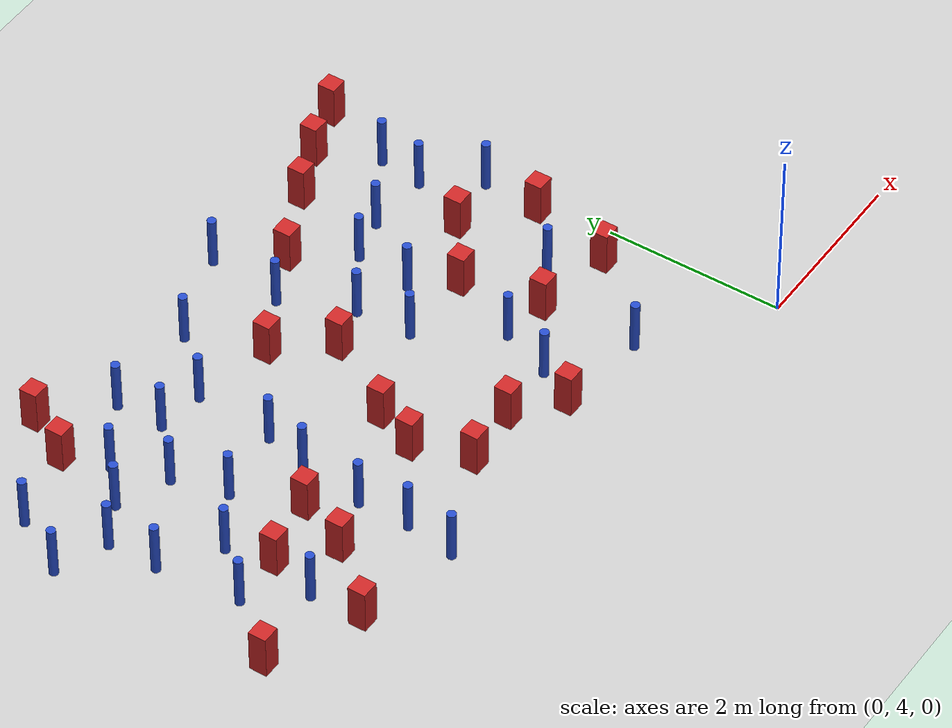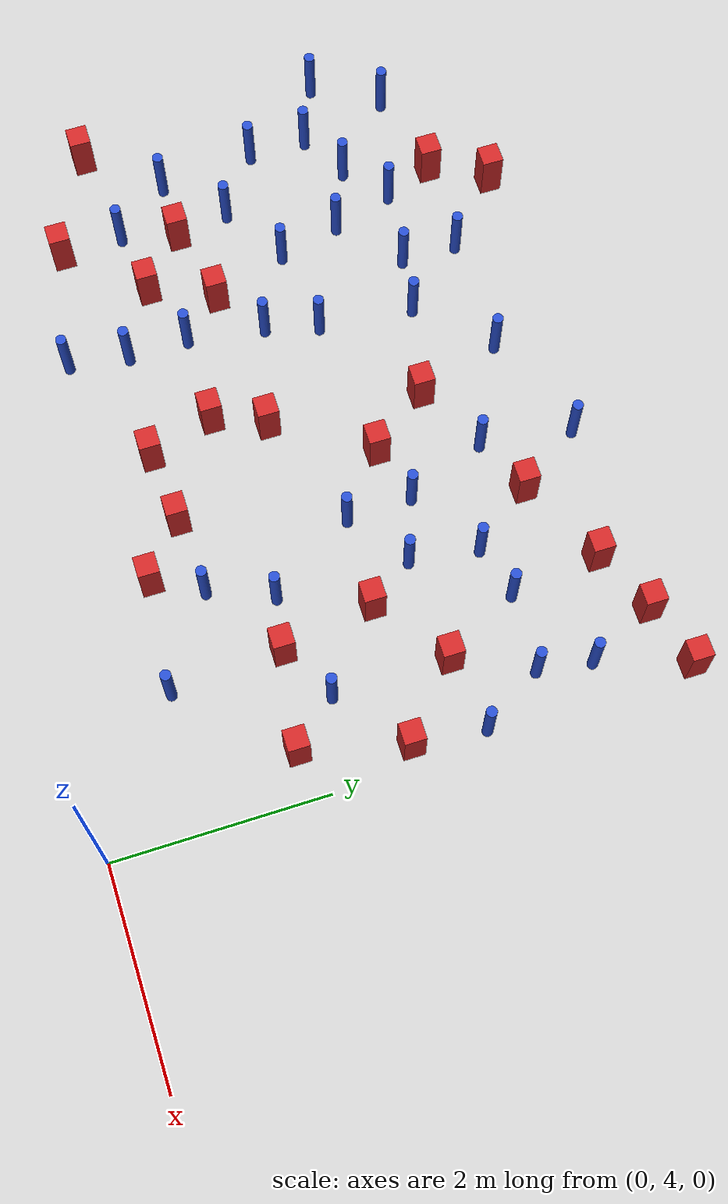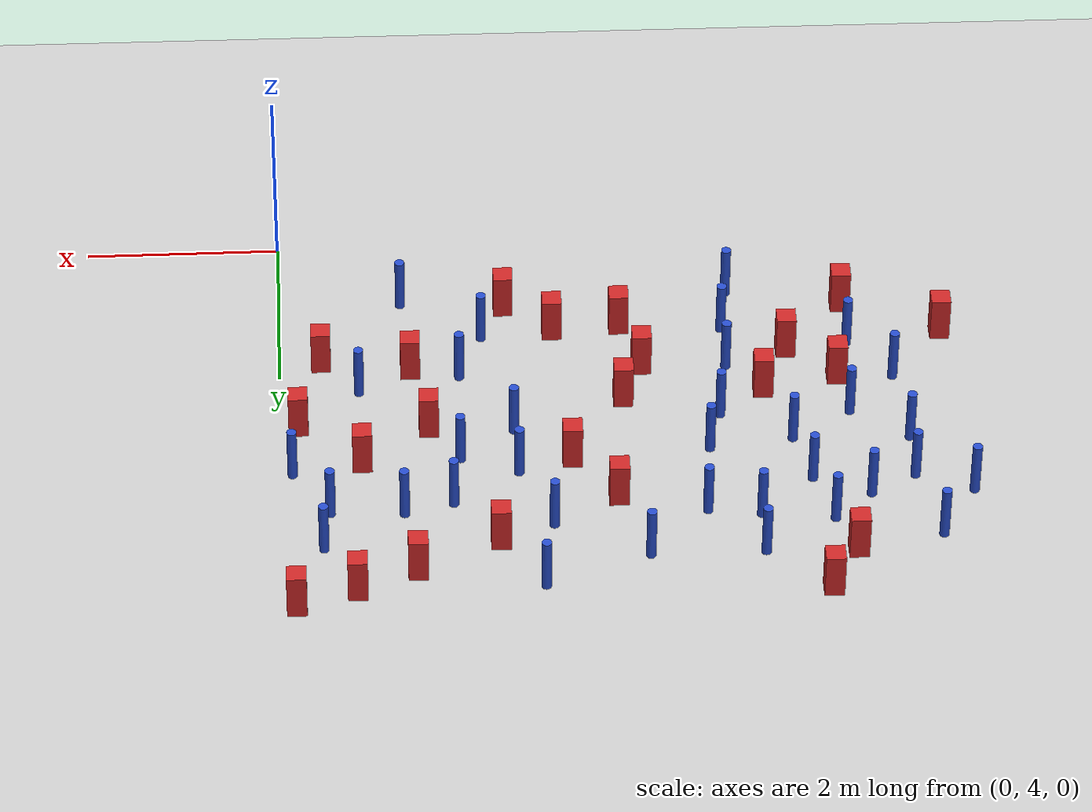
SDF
<sdf version="1.6">
 <world name="default">
  <model name="ground_plane">
   <static>1</static>
   <link name="link">
    <collision name="collision">
     <geometry><plane><normal>0 0 1</normal><size>100 100</size></plane></geometry>
     <surface><friction><ode><mu>100</mu><mu2>50</mu2></ode></friction></surface>
    </collision>
    <visual name="visual">
     <cast_shadows>0</cast_shadows>
     <geometry><plane><normal>0 0 1</normal><size>100 100</size></plane></geometry>
     <material>
      <ambient>1.0 1.0 1.0 1.0</ambient>
      <diffuse>0.8 0.8 0.8 1.0</diffuse>
      <specular>0.01 0.01 0.01 1.000000</specular>
     </material>
    </visual>
   </link>
  </model>
  <model name="square_post_obstacle0">
   <static>true</static>
   <pose>-0.75469007725 9.18106437961 8.22691968438e-08 7.22125133819e-06 -7.54495500217e-07 2.29674213826e-05</pose>
   <link name="link">
    <pose>0 0 0.25 0 -0 0</pose>
    <inertial>
     <mass>100</mass>
     <inertia>
      <ixx>0.166667</ixx>
      <ixy>0</ixy>
      <ixz>0</ixz>
      <iyy>0.166667</iyy>
      <iyz>0</iyz>
      <izz>0.166667</izz>
     </inertia>
    </inertial>
    <collision name="collision"><geometry><box><size>.2 .2 .5</size></box></geometry></collision>
    <visual name="visual">
     <geometry><box><size>.2 .2 .5</size></box></geometry>
     <material>
      <script><name>Gazebo/Red</name><uri>file://media/materials/scripts/gazebo.material</uri></script>
     </material>
    </visual>
   </link>
  </model>
  <model name="square_post_obstacle2">
   <static>true</static>
   <pose>-0.434591749695 5.815922877 8.22691968438e-08 7.22125133819e-06 -7.54495500217e-07 2.29674213826e-05</pose>
   <link name="link">
    <pose>0 0 0.25 0 -0 0</pose>
    <inertial>
     <mass>100</mass>
     <inertia>
      <ixx>0.166667</ixx>
      <ixy>0</ixy>
      <ixz>0</ixz>
      <iyy>0.166667</iyy>
      <iyz>0</iyz>
      <izz>0.166667</izz>
     </inertia>
    </inertial>
    <collision name="collision"><geometry><box><size>.2 .2 .5</size></box></geometry></collision>
    <visual name="visual">
     <geometry><box><size>.2 .2 .5</size></box></geometry>
     <material>
      <script><name>Gazebo/Red</name><uri>file://media/materials/scripts/gazebo.material</uri></script>
     </material>
    </visual>
   </link>
  </model>
  <model name="square_post_obstacle4">
   <static>true</static>
   <pose>-0.833897345285 7.33856920669 8.22691968438e-08 7.2212513382e-06 -7.54495500217e-07 2.29674213826e-05</pose>
   <link name="link">
    <pose>0 0 0.25 0 -0 0</pose>
    <inertial>
     <mass>100</mass>
     <inertia>
      <ixx>0.166667</ixx>
      <ixy>0</ixy>
      <ixz>0</ixz>
      <iyy>0.166667</iyy>
      <iyz>0</iyz>
      <izz>0.166667</izz>
     </inertia>
    </inertial>
    <collision name="collision"><geometry><box><size>.2 .2 .5</size></box></geometry></collision>
    <visual name="visual">
     <geometry><box><size>.2 .2 .5</size></box></geometry>
     <material>
      <script><name>Gazebo/Red</name><uri>file://media/materials/scripts/gazebo.material</uri></script>
     </material>
    </visual>
   </link>
  </model>
  <model name="pole_obstacle5">
   <static>true</static>
   <pose>-4.36620819852 7.22213696595 2.88873142074e-08 -9.90536690842e-09 4.60219948965e-07 -1.20965994976e-07</pose>
   <link name="link">
    <pose>0 0 0.3 0 -0 0</pose>
    <inertial>
     <mass>1</mass>
     <inertia><ixx>0.145833</ixx><ixy>0</ixy><ixz>0</ixz><iyy>0.145833</iyy><iyz>0</iyz><izz>0.125</izz></inertia>
    </inertial>
    <collision name="collision">
     <geometry><cylinder><radius>0.05</radius><length>.6</length></cylinder></geometry>
    </collision>
    <visual name="visual">
     <geometry><cylinder><radius>0.05</radius><length>.6</length></cylinder></geometry>
     <material>
      <script><name>Gazebo/Blue</name><uri>file://media/materials/scripts/gazebo.material</uri></script>
     </material>
    </visual>
   </link>
  </model>
  <model name="pole_obstacle11">
   <static>true</static>
   <pose>-5.37472583183 7.70263411717 2.88873142074e-08 -9.90536690842e-09 4.60219948965e-07 -1.20965994976e-07</pose>
   <link name="link">
    <pose>0 0 0.3 0 -0 0</pose>
    <inertial>
     <mass>1</mass>
     <inertia><ixx>0.145833</ixx><ixy>0</ixy><ixz>0</ixz><iyy>0.145833</iyy><iyz>0</iyz><izz>0.125</izz></inertia>
    </inertial>
    <collision name="collision">
     <geometry><cylinder><radius>0.05</radius><length>.6</length></cylinder></geometry>
    </collision>
    <visual name="visual">
     <geometry><cylinder><radius>0.05</radius><length>.6</length></cylinder></geometry>
     <material>
      <script><name>Gazebo/Blue</name><uri>file://media/materials/scripts/gazebo.material</uri></script>
     </material>
    </visual>
   </link>
  </model>
  <model name="pole_obstacle15">
   <static>true</static>
   <pose>-1.85488201403 6.04811225388 2.88873142074e-08 -9.90536689852e-09 4.60219948989e-07 -1.2096599496e-07</pose>
   <link name="link">
    <pose>0 0 0.3 0 -0 0</pose>
    <inertial>
     <mass>1</mass>
     <inertia><ixx>0.145833</ixx><ixy>0</ixy><ixz>0</ixz><iyy>0.145833</iyy><iyz>0</iyz><izz>0.125</izz></inertia>
    </inertial>
    <collision name="collision">
     <geometry><cylinder><radius>0.05</radius><length>.6</length></cylinder></geometry>
    </collision>
    <visual name="visual">
     <geometry><cylinder><radius>0.05</radius><length>.6</length></cylinder></geometry>
     <material>
      <script><name>Gazebo/Blue</name><uri>file://media/materials/scripts/gazebo.material</uri></script>
     </material>
    </visual>
   </link>
  </model>
  <model name="square_post_obstacle27">
   <static>true</static>
   <pose>-4.9641482404 6.37326070435 8.22691968438e-08 7.2212513382e-06 -7.54495500217e-07 2.29674213826e-05</pose>
   <link name="link">
    <pose>0 0 0.25 0 -0 0</pose>
    <inertial>
     <mass>100</mass>
     <inertia>
      <ixx>0.166667</ixx>
      <ixy>0</ixy>
      <ixz>0</ixz>
      <iyy>0.166667</iyy>
      <iyz>0</iyz>
      <izz>0.166667</izz>
     </inertia>
    </inertial>
    <collision name="collision"><geometry><box><size>.2 .2 .5</size></box></geometry></collision>
    <visual name="visual">
     <geometry><box><size>.2 .2 .5</size></box></geometry>
     <material>
      <script><name>Gazebo/Red</name><uri>file://media/materials/scripts/gazebo.material</uri></script>
     </material>
    </visual>
   </link>
  </model>
  <model name="square_post_obstacle32">
   <static>true</static>
   <pose>-2.9597742817 7.34418340851 8.22691968438e-08 7.2212513382e-06 -7.54495500217e-07 2.29674213826e-05</pose>
   <link name="link">
    <pose>0 0 0.25 0 -0 0</pose>
    <inertial>
     <mass>100</mass>
     <inertia>
      <ixx>0.166667</ixx>
      <ixy>0</ixy>
      <ixz>0</ixz>
      <iyy>0.166667</iyy>
      <iyz>0</iyz>
      <izz>0.166667</izz>
     </inertia>
    </inertial>
    <collision name="collision"><geometry><box><size>.2 .2 .5</size></box></geometry></collision>
    <visual name="visual">
     <geometry><box><size>.2 .2 .5</size></box></geometry>
     <material>
      <script><name>Gazebo/Red</name><uri>file://media/materials/scripts/gazebo.material</uri></script>
     </material>
    </visual>
   </link>
  </model>
  <model name="square_post_obstacle43">
   <static>true</static>
   <pose>-1.35121013971 5.95840660229 8.22691968438e-08 7.2212513382e-06 -7.54495500217e-07 2.29674213826e-05</pose>
   <link name="link">
    <pose>0 0 0.25 0 -0 0</pose>
    <inertial>
     <mass>100</mass>
     <inertia>
      <ixx>0.166667</ixx>
      <ixy>0</ixy>
      <ixz>0</ixz>
      <iyy>0.166667</iyy>
      <iyz>0</iyz>
      <izz>0.166667</izz>
     </inertia>
    </inertial>
    <collision name="collision"><geometry><box><size>.2 .2 .5</size></box></geometry></collision>
    <visual name="visual">
     <geometry><box><size>.2 .2 .5</size></box></geometry>
     <material>
      <script><name>Gazebo/Red</name><uri>file://media/materials/scripts/gazebo.material</uri></script>
     </material>
    </visual>
   </link>
  </model>
  <model name="pole_obstacle46">
   <static>true</static>
   <pose>-6.41535099207 7.69354765389 2.88873142074e-08 -9.90536690842e-09 4.60219948965e-07 -1.20965994976e-07</pose>
   <link name="link">
    <pose>0 0 0.3 0 -0 0</pose>
    <inertial>
     <mass>1</mass>
     <inertia><ixx>0.145833</ixx><ixy>0</ixy><ixz>0</ixz><iyy>0.145833</iyy><iyz>0</iyz><izz>0.125</izz></inertia>
    </inertial>
    <collision name="collision">
     <geometry><cylinder><radius>0.05</radius><length>.6</length></cylinder></geometry>
    </collision>
    <visual name="visual">
     <geometry><cylinder><radius>0.05</radius><length>.6</length></cylinder></geometry>
     <material>
      <script><name>Gazebo/Blue</name><uri>file://media/materials/scripts/gazebo.material</uri></script>
     </material>
    </visual>
   </link>
  </model>
  <model name="pole_obstacle47">
   <static>true</static>
   <pose>-4.67995107639 4.84374280974 2.88873142074e-08 -9.90536690842e-09 4.60219948965e-07 -1.20965994976e-07</pose>
   <link name="link">
    <pose>0 0 0.3 0 -0 0</pose>
    <inertial>
     <mass>1</mass>
     <inertia><ixx>0.145833</ixx><ixy>0</ixy><ixz>0</ixz><iyy>0.145833</iyy><iyz>0</iyz><izz>0.125</izz></inertia>
    </inertial>
    <collision name="collision">
     <geometry><cylinder><radius>0.05</radius><length>.6</length></cylinder></geometry>
    </collision>
    <visual name="visual">
     <geometry><cylinder><radius>0.05</radius><length>.6</length></cylinder></geometry>
     <material>
      <script><name>Gazebo/Blue</name><uri>file://media/materials/scripts/gazebo.material</uri></script>
     </material>
    </visual>
   </link>
  </model>
  <model name="pole_obstacle50">
   <static>true</static>
   <pose>-4.59498439407 5.40994336621 2.88873142074e-08 -9.90536690842e-09 4.60219948965e-07 -1.20965994976e-07</pose>
   <link name="link">
    <pose>0 0 0.3 0 -0 0</pose>
    <inertial>
     <mass>1</mass>
     <inertia><ixx>0.145833</ixx><ixy>0</ixy><ixz>0</ixz><iyy>0.145833</iyy><iyz>0</iyz><izz>0.125</izz></inertia>
    </inertial>
    <collision name="collision">
     <geometry><cylinder><radius>0.05</radius><length>.6</length></cylinder></geometry>
    </collision>
    <visual name="visual">
     <geometry><cylinder><radius>0.05</radius><length>.6</length></cylinder></geometry>
     <material>
      <script><name>Gazebo/Blue</name><uri>file://media/materials/scripts/gazebo.material</uri></script>
     </material>
    </visual>
   </link>
  </model>
  <model name="pole_obstacle59">
   <static>true</static>
   <pose>-5.95150804561 7.949520988 2.88873142074e-08 -9.90536690842e-09 4.60219948965e-07 -1.20965994976e-07</pose>
   <link name="link">
    <pose>0 0 0.3 0 -0 0</pose>
    <inertial>
     <mass>1</mass>
     <inertia><ixx>0.145833</ixx><ixy>0</ixy><ixz>0</ixz><iyy>0.145833</iyy><iyz>0</iyz><izz>0.125</izz></inertia>
    </inertial>
    <collision name="collision">
     <geometry><cylinder><radius>0.05</radius><length>.6</length></cylinder></geometry>
    </collision>
    <visual name="visual">
     <geometry><cylinder><radius>0.05</radius><length>.6</length></cylinder></geometry>
     <material>
      <script><name>Gazebo/Blue</name><uri>file://media/materials/scripts/gazebo.material</uri></script>
     </material>
    </visual>
   </link>
  </model>
  <model name="square_post_obstacle63">
   <static>true</static>
   <pose>-3.73327817943 5.97383684884 8.22691968438e-08 7.2212513382e-06 -7.54495500217e-07 2.29674213826e-05</pose>
   <link name="link">
    <pose>0 0 0.25 0 -0 0</pose>
    <inertial>
     <mass>100</mass>
     <inertia>
      <ixx>0.166667</ixx>
      <ixy>0</ixy>
      <ixz>0</ixz>
      <iyy>0.166667</iyy>
      <iyz>0</iyz>
      <izz>0.166667</izz>
     </inertia>
    </inertial>
    <collision name="collision"><geometry><box><size>.2 .2 .5</size></box></geometry></collision>
    <visual name="visual">
     <geometry><box><size>.2 .2 .5</size></box></geometry>
     <material>
      <script><name>Gazebo/Red</name><uri>file://media/materials/scripts/gazebo.material</uri></script>
     </material>
    </visual>
   </link>
  </model>
  <model name="pole_obstacle65">
   <static>true</static>
   <pose>-2.61852434935 9.14432476609 2.88873142074e-08 -9.90536692318e-09 4.6021994893e-07 -1.20965994988e-07</pose>
   <link name="link">
    <pose>0 0 0.3 0 -0 0</pose>
    <inertial>
     <mass>1</mass>
     <inertia><ixx>0.145833</ixx><ixy>0</ixy><ixz>0</ixz><iyy>0.145833</iyy><iyz>0</iyz><izz>0.125</izz></inertia>
    </inertial>
    <collision name="collision">
     <geometry><cylinder><radius>0.05</radius><length>.6</length></cylinder></geometry>
    </collision>
    <visual name="visual">
     <geometry><cylinder><radius>0.05</radius><length>.6</length></cylinder></geometry>
     <material>
      <script><name>Gazebo/Blue</name><uri>file://media/materials/scripts/gazebo.material</uri></script>
     </material>
    </visual>
   </link>
  </model>
  <model name="pole_obstacle71">
   <static>true</static>
   <pose>-4.82885174587 8.74131016999 2.88873142074e-08 -9.9053668967e-09 4.60219948993e-07 -1.20965994957e-07</pose>
   <link name="link">
    <pose>0 0 0.3 0 -0 0</pose>
    <inertial>
     <mass>1</mass>
     <inertia><ixx>0.145833</ixx><ixy>0</ixy><ixz>0</ixz><iyy>0.145833</iyy><iyz>0</iyz><izz>0.125</izz></inertia>
    </inertial>
    <collision name="collision">
     <geometry><cylinder><radius>0.05</radius><length>.6</length></cylinder></geometry>
    </collision>
    <visual name="visual">
     <geometry><cylinder><radius>0.05</radius><length>.6</length></cylinder></geometry>
     <material>
      <script><name>Gazebo/Blue</name><uri>file://media/materials/scripts/gazebo.material</uri></script>
     </material>
    </visual>
   </link>
  </model>
  <model name="square_post_obstacle84">
   <static>true</static>
   <pose>-0.150910491051 9.37455441093 8.22691968438e-08 7.22125133819e-06 -7.54495500217e-07 2.29674213826e-05</pose>
   <link name="link">
    <pose>0 0 0.25 0 -0 0</pose>
    <inertial>
     <mass>100</mass>
     <inertia>
      <ixx>0.166667</ixx>
      <ixy>0</ixy>
      <ixz>0</ixz>
      <iyy>0.166667</iyy>
      <iyz>0</iyz>
      <izz>0.166667</izz>
     </inertia>
    </inertial>
    <collision name="collision"><geometry><box><size>.2 .2 .5</size></box></geometry></collision>
    <visual name="visual">
     <geometry><box><size>.2 .2 .5</size></box></geometry>
     <material>
      <script><name>Gazebo/Red</name><uri>file://media/materials/scripts/gazebo.material</uri></script>
     </material>
    </visual>
   </link>
  </model>
  <model name="square_post_obstacle86">
   <static>true</static>
   <pose>-5.45362824886 9.28962548809 8.22691968438e-08 7.22125133819e-06 -7.54495500217e-07 2.29674213826e-05</pose>
   <link name="link">
    <pose>0 0 0.25 0 -0 0</pose>
    <inertial>
     <mass>100</mass>
     <inertia>
      <ixx>0.166667</ixx>
      <ixy>0</ixy>
      <ixz>0</ixz>
      <iyy>0.166667</iyy>
      <iyz>0</iyz>
      <izz>0.166667</izz>
     </inertia>
    </inertial>
    <collision name="collision"><geometry><box><size>.2 .2 .5</size></box></geometry></collision>
    <visual name="visual">
     <geometry><box><size>.2 .2 .5</size></box></geometry>
     <material>
      <script><name>Gazebo/Red</name><uri>file://media/materials/scripts/gazebo.material</uri></script>
     </material>
    </visual>
   </link>
  </model>
  <model name="square_post_obstacle87">
   <static>true</static>
   <pose>-3.4032696324 7.918303642 8.22691968438e-08 7.22125133819e-06 -7.54495500217e-07 2.29674213826e-05</pose>
   <link name="link">
    <pose>0 0 0.25 0 -0 0</pose>
    <inertial>
     <mass>100</mass>
     <inertia>
      <ixx>0.166667</ixx>
      <ixy>0</ixy>
      <ixz>0</ixz>
      <iyy>0.166667</iyy>
      <iyz>0</iyz>
      <izz>0.166667</izz>
     </inertia>
    </inertial>
    <collision name="collision"><geometry><box><size>.2 .2 .5</size></box></geometry></collision>
    <visual name="visual">
     <geometry><box><size>.2 .2 .5</size></box></geometry>
     <material>
      <script><name>Gazebo/Red</name><uri>file://media/materials/scripts/gazebo.material</uri></script>
     </material>
    </visual>
   </link>
  </model>
  <model name="square_post_obstacle95">
   <static>true</static>
   <pose>-2.83246593654 5.40430172224 8.22691968438e-08 7.2212513382e-06 -7.54495500217e-07 2.29674213826e-05</pose>
   <link name="link">
    <pose>0 0 0.25 0 -0 0</pose>
    <inertial>
     <mass>100</mass>
     <inertia>
      <ixx>0.166667</ixx>
      <ixy>0</ixy>
      <ixz>0</ixz>
      <iyy>0.166667</iyy>
      <iyz>0</iyz>
      <izz>0.166667</izz>
     </inertia>
    </inertial>
    <collision name="collision"><geometry><box><size>.2 .2 .5</size></box></geometry></collision>
    <visual name="visual">
     <geometry><box><size>.2 .2 .5</size></box></geometry>
     <material>
      <script><name>Gazebo/Red</name><uri>file://media/materials/scripts/gazebo.material</uri></script>
     </material>
    </visual>
   </link>
  </model>
  <model name="pole_obstacle109">
   <static>true</static>
   <pose>-1.24381678062 8.06851914153 2.88873142074e-08 -9.90536690474e-09 4.60219948974e-07 -1.2096599497e-07</pose>
   <link name="link">
    <pose>0 0 0.3 0 -0 0</pose>
    <inertial>
     <mass>1</mass>
     <inertia><ixx>0.145833</ixx><ixy>0</ixy><ixz>0</ixz><iyy>0.145833</iyy><iyz>0</iyz><izz>0.125</izz></inertia>
    </inertial>
    <collision name="collision">
     <geometry><cylinder><radius>0.05</radius><length>.6</length></cylinder></geometry>
    </collision>
    <visual name="visual">
     <geometry><cylinder><radius>0.05</radius><length>.6</length></cylinder></geometry>
     <material>
      <script><name>Gazebo/Blue</name><uri>file://media/materials/scripts/gazebo.material</uri></script>
     </material>
    </visual>
   </link>
  </model>
  <model name="square_post_obstacle101">
   <static>true</static>
   <pose>-6.85830994746 5.54194706226 8.22691968438e-08 7.2212513382e-06 -7.54495500217e-07 2.29674213826e-05</pose>
   <link name="link">
    <pose>0 0 0.25 0 -0 0</pose>
    <inertial>
     <mass>100</mass>
     <inertia>
      <ixx>0.166667</ixx>
      <ixy>0</ixy>
      <ixz>0</ixz>
      <iyy>0.166667</iyy>
      <iyz>0</iyz>
      <izz>0.166667</izz>
     </inertia>
    </inertial>
    <collision name="collision"><geometry><box><size>.2 .2 .5</size></box></geometry></collision>
    <visual name="visual">
     <geometry><box><size>.2 .2 .5</size></box></geometry>
     <material>
      <script><name>Gazebo/Red</name><uri>file://media/materials/scripts/gazebo.material</uri></script>
     </material>
    </visual>
   </link>
  </model>
  <model name="pole_obstacle114">
   <static>true</static>
   <pose>-2.73900634441 8.2763860509 2.88873142074e-08 -9.90536692318e-09 4.6021994893e-07 -1.20965994988e-07</pose>
   <link name="link">
    <pose>0 0 0.3 0 -0 0</pose>
    <inertial>
     <mass>1</mass>
     <inertia><ixx>0.145833</ixx><ixy>0</ixy><ixz>0</ixz><iyy>0.145833</iyy><iyz>0</iyz><izz>0.125</izz></inertia>
    </inertial>
    <collision name="collision">
     <geometry><cylinder><radius>0.05</radius><length>.6</length></cylinder></geometry>
    </collision>
    <visual name="visual">
     <geometry><cylinder><radius>0.05</radius><length>.6</length></cylinder></geometry>
     <material>
      <script><name>Gazebo/Blue</name><uri>file://media/materials/scripts/gazebo.material</uri></script>
     </material>
    </visual>
   </link>
  </model>
  <model name="pole_obstacle117">
   <static>true</static>
   <pose>-6.62152211061 8.55711727859 2.88873142074e-08 -9.9053668967e-09 4.60219948993e-07 -1.20965994957e-07</pose>
   <link name="link">
    <pose>0 0 0.3 0 -0 0</pose>
    <inertial>
     <mass>1</mass>
     <inertia><ixx>0.145833</ixx><ixy>0</ixy><ixz>0</ixz><iyy>0.145833</iyy><iyz>0</iyz><izz>0.125</izz></inertia>
    </inertial>
    <collision name="collision">
     <geometry><cylinder><radius>0.05</radius><length>.6</length></cylinder></geometry>
    </collision>
    <visual name="visual">
     <geometry><cylinder><radius>0.05</radius><length>.6</length></cylinder></geometry>
     <material>
      <script><name>Gazebo/Blue</name><uri>file://media/materials/scripts/gazebo.material</uri></script>
     </material>
    </visual>
   </link>
  </model>
  <model name="square_post_obstacle107">
   <static>true</static>
   <pose>-5.23865522076 5.77258080823 8.22691968438e-08 7.22125133819e-06 -7.54495500217e-07 2.29674213826e-05</pose>
   <link name="link">
    <pose>0 0 0.25 0 -0 0</pose>
    <inertial>
     <mass>100</mass>
     <inertia>
      <ixx>0.166667</ixx>
      <ixy>0</ixy>
      <ixz>0</ixz>
      <iyy>0.166667</iyy>
      <iyz>0</iyz>
      <izz>0.166667</izz>
     </inertia>
    </inertial>
    <collision name="collision"><geometry><box><size>.2 .2 .5</size></box></geometry></collision>
    <visual name="visual">
     <geometry><box><size>.2 .2 .5</size></box></geometry>
     <material>
      <script><name>Gazebo/Red</name><uri>file://media/materials/scripts/gazebo.material</uri></script>
     </material>
    </visual>
   </link>
  </model>
  <model name="square_post_obstacle109">
   <static>true</static>
   <pose>-2.34127348376 5.01341671532 8.22691968438e-08 7.2212513382e-06 -7.54495500217e-07 2.29674213826e-05</pose>
   <link name="link">
    <pose>0 0 0.25 0 -0 0</pose>
    <inertial>
     <mass>100</mass>
     <inertia>
      <ixx>0.166667</ixx>
      <ixy>0</ixy>
      <ixz>0</ixz>
      <iyy>0.166667</iyy>
      <iyz>0</iyz>
      <izz>0.166667</izz>
     </inertia>
    </inertial>
    <collision name="collision"><geometry><box><size>.2 .2 .5</size></box></geometry></collision>
    <visual name="visual">
     <geometry><box><size>.2 .2 .5</size></box></geometry>
     <material>
      <script><name>Gazebo/Red</name><uri>file://media/materials/scripts/gazebo.material</uri></script>
     </material>
    </visual>
   </link>
  </model>
  <model name="square_post_obstacle112">
   <static>true</static>
   <pose>-1.51897092121 6.84121964102 8.22691968438e-08 7.2212513382e-06 -7.54495500217e-07 2.29674213826e-05</pose>
   <link name="link">
    <pose>0 0 0.25 0 -0 0</pose>
    <inertial>
     <mass>100</mass>
     <inertia>
      <ixx>0.166667</ixx>
      <ixy>0</ixy>
      <ixz>0</ixz>
      <iyy>0.166667</iyy>
      <iyz>0</iyz>
      <izz>0.166667</izz>
     </inertia>
    </inertial>
    <collision name="collision"><geometry><box><size>.2 .2 .5</size></box></geometry></collision>
    <visual name="visual">
     <geometry><box><size>.2 .2 .5</size></box></geometry>
     <material>
      <script><name>Gazebo/Red</name><uri>file://media/materials/scripts/gazebo.material</uri></script>
     </material>
    </visual>
   </link>
  </model>
  <model name="pole_obstacle128">
   <static>true</static>
   <pose>-6.98992035852 7.93271147643 2.88873142074e-08 -9.90536690842e-09 4.60219948965e-07 -1.20965994976e-07</pose>
   <link name="link">
    <pose>0 0 0.3 0 -0 0</pose>
    <inertial>
     <mass>1</mass>
     <inertia><ixx>0.145833</ixx><ixy>0</ixy><ixz>0</ixz><iyy>0.145833</iyy><iyz>0</iyz><izz>0.125</izz></inertia>
    </inertial>
    <collision name="collision">
     <geometry><cylinder><radius>0.05</radius><length>.6</length></cylinder></geometry>
    </collision>
    <visual name="visual">
     <geometry><cylinder><radius>0.05</radius><length>.6</length></cylinder></geometry>
     <material>
      <script><name>Gazebo/Blue</name><uri>file://media/materials/scripts/gazebo.material</uri></script>
     </material>
    </visual>
   </link>
  </model>
  <model name="pole_obstacle130">
   <static>true</static>
   <pose>-4.28661356811 8.12784247479 2.88873142074e-08 -9.9053668967e-09 4.60219948993e-07 -1.20965994957e-07</pose>
   <link name="link">
    <pose>0 0 0.3 0 -0 0</pose>
    <inertial>
     <mass>1</mass>
     <inertia><ixx>0.145833</ixx><ixy>0</ixy><ixz>0</ixz><iyy>0.145833</iyy><iyz>0</iyz><izz>0.125</izz></inertia>
    </inertial>
    <collision name="collision">
     <geometry><cylinder><radius>0.05</radius><length>.6</length></cylinder></geometry>
    </collision>
    <visual name="visual">
     <geometry><cylinder><radius>0.05</radius><length>.6</length></cylinder></geometry>
     <material>
      <script><name>Gazebo/Blue</name><uri>file://media/materials/scripts/gazebo.material</uri></script>
     </material>
    </visual>
   </link>
  </model>
  <model name="pole_obstacle131">
   <static>true</static>
   <pose>-5.88333046102 5.67307438097 2.88873142074e-08 -9.90536690842e-09 4.60219948965e-07 -1.20965994976e-07</pose>
   <link name="link">
    <pose>0 0 0.3 0 -0 0</pose>
    <inertial>
     <mass>1</mass>
     <inertia><ixx>0.145833</ixx><ixy>0</ixy><ixz>0</ixz><iyy>0.145833</iyy><iyz>0</iyz><izz>0.125</izz></inertia>
    </inertial>
    <collision name="collision">
     <geometry><cylinder><radius>0.05</radius><length>.6</length></cylinder></geometry>
    </collision>
    <visual name="visual">
     <geometry><cylinder><radius>0.05</radius><length>.6</length></cylinder></geometry>
     <material>
      <script><name>Gazebo/Blue</name><uri>file://media/materials/scripts/gazebo.material</uri></script>
     </material>
    </visual>
   </link>
  </model>
  <model name="pole_obstacle136">
   <static>true</static>
   <pose>-5.83110367715 6.72051209729 2.88873142074e-08 -9.90536690842e-09 4.60219948965e-07 -1.20965994976e-07</pose>
   <link name="link">
    <pose>0 0 0.3 0 -0 0</pose>
    <inertial>
     <mass>1</mass>
     <inertia><ixx>0.145833</ixx><ixy>0</ixy><ixz>0</ixz><iyy>0.145833</iyy><iyz>0</iyz><izz>0.125</izz></inertia>
    </inertial>
    <collision name="collision">
     <geometry><cylinder><radius>0.05</radius><length>.6</length></cylinder></geometry>
    </collision>
    <visual name="visual">
     <geometry><cylinder><radius>0.05</radius><length>.6</length></cylinder></geometry>
     <material>
      <script><name>Gazebo/Blue</name><uri>file://media/materials/scripts/gazebo.material</uri></script>
     </material>
    </visual>
   </link>
  </model>
  <model name="pole_obstacle148">
   <static>true</static>
   <pose>-3.67796148019 8.74616513936 2.88873142074e-08 -9.9053668994e-09 4.60219948987e-07 -1.20965994963e-07</pose>
   <link name="link">
    <pose>0 0 0.3 0 -0 0</pose>
    <inertial>
     <mass>1</mass>
     <inertia><ixx>0.145833</ixx><ixy>0</ixy><ixz>0</ixz><iyy>0.145833</iyy><iyz>0</iyz><izz>0.125</izz></inertia>
    </inertial>
    <collision name="collision">
     <geometry><cylinder><radius>0.05</radius><length>.6</length></cylinder></geometry>
    </collision>
    <visual name="visual">
     <geometry><cylinder><radius>0.05</radius><length>.6</length></cylinder></geometry>
     <material>
      <script><name>Gazebo/Blue</name><uri>file://media/materials/scripts/gazebo.material</uri></script>
     </material>
    </visual>
   </link>
  </model>
  <model name="pole_obstacle149">
   <static>true</static>
   <pose>-4.60672647002 5.98585514111 2.88873142074e-08 -9.90536690842e-09 4.60219948965e-07 -1.20965994976e-07</pose>
   <link name="link">
    <pose>0 0 0.3 0 -0 0</pose>
    <inertial>
     <mass>1</mass>
     <inertia><ixx>0.145833</ixx><ixy>0</ixy><ixz>0</ixz><iyy>0.145833</iyy><iyz>0</iyz><izz>0.125</izz></inertia>
    </inertial>
    <collision name="collision">
     <geometry><cylinder><radius>0.05</radius><length>.6</length></cylinder></geometry>
    </collision>
    <visual name="visual">
     <geometry><cylinder><radius>0.05</radius><length>.6</length></cylinder></geometry>
     <material>
      <script><name>Gazebo/Blue</name><uri>file://media/materials/scripts/gazebo.material</uri></script>
     </material>
    </visual>
   </link>
  </model>
  <model name="pole_obstacle150">
   <static>true</static>
   <pose>-0.429374515944 8.54536852502 2.88873142074e-08 -9.90536691079e-09 4.6021994896e-07 -1.2096599498e-07</pose>
   <link name="link">
    <pose>0 0 0.3 0 -0 0</pose>
    <inertial>
     <mass>1</mass>
     <inertia><ixx>0.145833</ixx><ixy>0</ixy><ixz>0</ixz><iyy>0.145833</iyy><iyz>0</iyz><izz>0.125</izz></inertia>
    </inertial>
    <collision name="collision">
     <geometry><cylinder><radius>0.05</radius><length>.6</length></cylinder></geometry>
    </collision>
    <visual name="visual">
     <geometry><cylinder><radius>0.05</radius><length>.6</length></cylinder></geometry>
     <material>
      <script><name>Gazebo/Blue</name><uri>file://media/materials/scripts/gazebo.material</uri></script>
     </material>
    </visual>
   </link>
  </model>
  <model name="square_post_obstacle141">
   <static>true</static>
   <pose>-5.74747124046 8.76001935191 8.22691968438e-08 7.22125133819e-06 -7.54495500217e-07 2.29674213826e-05</pose>
   <link name="link">
    <pose>0 0 0.25 0 -0 0</pose>
    <inertial>
     <mass>100</mass>
     <inertia>
      <ixx>0.166667</ixx>
      <ixy>0</ixy>
      <ixz>0</ixz>
      <iyy>0.166667</iyy>
      <iyz>0</iyz>
      <izz>0.166667</izz>
     </inertia>
    </inertial>
    <collision name="collision"><geometry><box><size>.2 .2 .5</size></box></geometry></collision>
    <visual name="visual">
     <geometry><box><size>.2 .2 .5</size></box></geometry>
     <material>
      <script><name>Gazebo/Red</name><uri>file://media/materials/scripts/gazebo.material</uri></script>
     </material>
    </visual>
   </link>
  </model>
  <model name="pole_obstacle152">
   <static>true</static>
   <pose>-2.38554378361 6.87812666192 2.88873142074e-08 -9.90536689859e-09 4.60219948989e-07 -1.20965994961e-07</pose>
   <link name="link">
    <pose>0 0 0.3 0 -0 0</pose>
    <inertial>
     <mass>1</mass>
     <inertia><ixx>0.145833</ixx><ixy>0</ixy><ixz>0</ixz><iyy>0.145833</iyy><iyz>0</iyz><izz>0.125</izz></inertia>
    </inertial>
    <collision name="collision">
     <geometry><cylinder><radius>0.05</radius><length>.6</length></cylinder></geometry>
    </collision>
    <visual name="visual">
     <geometry><cylinder><radius>0.05</radius><length>.6</length></cylinder></geometry>
     <material>
      <script><name>Gazebo/Blue</name><uri>file://media/materials/scripts/gazebo.material</uri></script>
     </material>
    </visual>
   </link>
  </model>
  <model name="square_post_obstacle154">
   <static>true</static>
   <pose>-5.85985489043 5.08433074316 8.22691968438e-08 7.22125133819e-06 -7.54495500217e-07 2.29674213826e-05</pose>
   <link name="link">
    <pose>0 0 0.25 0 -0 0</pose>
    <inertial>
     <mass>100</mass>
     <inertia>
      <ixx>0.166667</ixx>
      <ixy>0</ixy>
      <ixz>0</ixz>
      <iyy>0.166667</iyy>
      <iyz>0</iyz>
      <izz>0.166667</izz>
     </inertia>
    </inertial>
    <collision name="collision"><geometry><box><size>.2 .2 .5</size></box></geometry></collision>
    <visual name="visual">
     <geometry><box><size>.2 .2 .5</size></box></geometry>
     <material>
      <script><name>Gazebo/Red</name><uri>file://media/materials/scripts/gazebo.material</uri></script>
     </material>
    </visual>
   </link>
  </model>
  <model name="pole_obstacle170">
   <static>true</static>
   <pose>-6.41033726684 7.13160684213 2.88873142074e-08 -9.90536690842e-09 4.60219948965e-07 -1.20965994976e-07</pose>
   <link name="link">
    <pose>0 0 0.3 0 -0 0</pose>
    <inertial>
     <mass>1</mass>
     <inertia><ixx>0.145833</ixx><ixy>0</ixy><ixz>0</ixz><iyy>0.145833</iyy><iyz>0</iyz><izz>0.125</izz></inertia>
    </inertial>
    <collision name="collision">
     <geometry><cylinder><radius>0.05</radius><length>.6</length></cylinder></geometry>
    </collision>
    <visual name="visual">
     <geometry><cylinder><radius>0.05</radius><length>.6</length></cylinder></geometry>
     <material>
      <script><name>Gazebo/Blue</name><uri>file://media/materials/scripts/gazebo.material</uri></script>
     </material>
    </visual>
   </link>
  </model>
  <model name="pole_obstacle178">
   <static>true</static>
   <pose>-0.500852753165 8.03797325467 2.88873142074e-08 -9.90536690252e-09 4.60219948979e-07 -1.20965994966e-07</pose>
   <link name="link">
    <pose>0 0 0.3 0 -0 0</pose>
    <inertial>
     <mass>1</mass>
     <inertia><ixx>0.145833</ixx><ixy>0</ixy><ixz>0</ixz><iyy>0.145833</iyy><iyz>0</iyz><izz>0.125</izz></inertia>
    </inertial>
    <collision name="collision">
     <geometry><cylinder><radius>0.05</radius><length>.6</length></cylinder></geometry>
    </collision>
    <visual name="visual">
     <geometry><cylinder><radius>0.05</radius><length>.6</length></cylinder></geometry>
     <material>
      <script><name>Gazebo/Blue</name><uri>file://media/materials/scripts/gazebo.material</uri></script>
     </material>
    </visual>
   </link>
  </model>
  <model name="pole_obstacle181">
   <static>true</static>
   <pose>-4.50413245885 6.72092753084 2.88873142074e-08 -9.90536690842e-09 4.60219948965e-07 -1.20965994976e-07</pose>
   <link name="link">
    <pose>0 0 0.3 0 -0 0</pose>
    <inertial>
     <mass>1</mass>
     <inertia><ixx>0.145833</ixx><ixy>0</ixy><ixz>0</ixz><iyy>0.145833</iyy><iyz>0</iyz><izz>0.125</izz></inertia>
    </inertial>
    <collision name="collision">
     <geometry><cylinder><radius>0.05</radius><length>.6</length></cylinder></geometry>
    </collision>
    <visual name="visual">
     <geometry><cylinder><radius>0.05</radius><length>.6</length></cylinder></geometry>
     <material>
      <script><name>Gazebo/Blue</name><uri>file://media/materials/scripts/gazebo.material</uri></script>
     </material>
    </visual>
   </link>
  </model>
  <model name="pole_obstacle185">
   <static>true</static>
   <pose>-6.31605351278 6.20655597373 2.88873142074e-08 -9.90536690842e-09 4.60219948965e-07 -1.20965994976e-07</pose>
   <link name="link">
    <pose>0 0 0.3 0 -0 0</pose>
    <inertial>
     <mass>1</mass>
     <inertia><ixx>0.145833</ixx><ixy>0</ixy><ixz>0</ixz><iyy>0.145833</iyy><iyz>0</iyz><izz>0.125</izz></inertia>
    </inertial>
    <collision name="collision">
     <geometry><cylinder><radius>0.05</radius><length>.6</length></cylinder></geometry>
    </collision>
    <visual name="visual">
     <geometry><cylinder><radius>0.05</radius><length>.6</length></cylinder></geometry>
     <material>
      <script><name>Gazebo/Blue</name><uri>file://media/materials/scripts/gazebo.material</uri></script>
     </material>
    </visual>
   </link>
  </model>
  <model name="pole_obstacle187">
   <static>true</static>
   <pose>-1.27348275291 4.90852478364 2.88873142074e-08 -9.90536689852e-09 4.60219948989e-07 -1.2096599496e-07</pose>
   <link name="link">
    <pose>0 0 0.3 0 -0 0</pose>
    <inertial>
     <mass>1</mass>
     <inertia><ixx>0.145833</ixx><ixy>0</ixy><ixz>0</ixz><iyy>0.145833</iyy><iyz>0</iyz><izz>0.125</izz></inertia>
    </inertial>
    <collision name="collision">
     <geometry><cylinder><radius>0.05</radius><length>.6</length></cylinder></geometry>
    </collision>
    <visual name="visual">
     <geometry><cylinder><radius>0.05</radius><length>.6</length></cylinder></geometry>
     <material>
      <script><name>Gazebo/Blue</name><uri>file://media/materials/scripts/gazebo.material</uri></script>
     </material>
    </visual>
   </link>
  </model>
  <model name="square_post_obstacle176">
   <static>true</static>
   <pose>-2.19360508808 8.51313842075 8.22691968438e-08 7.22125133819e-06 -7.54495500217e-07 2.29674213826e-05</pose>
   <link name="link">
    <pose>0 0 0.25 0 -0 0</pose>
    <inertial>
     <mass>100</mass>
     <inertia>
      <ixx>0.166667</ixx>
      <ixy>0</ixy>
      <ixz>0</ixz>
      <iyy>0.166667</iyy>
      <iyz>0</iyz>
      <izz>0.166667</izz>
     </inertia>
    </inertial>
    <collision name="collision"><geometry><box><size>.2 .2 .5</size></box></geometry></collision>
    <visual name="visual">
     <geometry><box><size>.2 .2 .5</size></box></geometry>
     <material>
      <script><name>Gazebo/Red</name><uri>file://media/materials/scripts/gazebo.material</uri></script>
     </material>
    </visual>
   </link>
  </model>
  <model name="square_post_obstacle184">
   <static>true</static>
   <pose>-0.192778356835 6.7746452228 8.22691968438e-08 7.22125133819e-06 -7.54495500217e-07 2.29674213826e-05</pose>
   <link name="link">
    <pose>0 0 0.25 0 -0 0</pose>
    <inertial>
     <mass>100</mass>
     <inertia>
      <ixx>0.166667</ixx>
      <ixy>0</ixy>
      <ixz>0</ixz>
      <iyy>0.166667</iyy>
      <iyz>0</iyz>
      <izz>0.166667</izz>
     </inertia>
    </inertial>
    <collision name="collision"><geometry><box><size>.2 .2 .5</size></box></geometry></collision>
    <visual name="visual">
     <geometry><box><size>.2 .2 .5</size></box></geometry>
     <material>
      <script><name>Gazebo/Red</name><uri>file://media/materials/scripts/gazebo.material</uri></script>
     </material>
    </visual>
   </link>
  </model>
  <model name="square_post_obstacle185">
   <static>true</static>
   <pose>-1.35832110647 8.91847868991 8.22691968438e-08 7.22125133819e-06 -7.54495500217e-07 2.29674213826e-05</pose>
   <link name="link">
    <pose>0 0 0.25 0 -0 0</pose>
    <inertial>
     <mass>100</mass>
     <inertia>
      <ixx>0.166667</ixx>
      <ixy>0</ixy>
      <ixz>0</ixz>
      <iyy>0.166667</iyy>
      <iyz>0</iyz>
      <izz>0.166667</izz>
     </inertia>
    </inertial>
    <collision name="collision"><geometry><box><size>.2 .2 .5</size></box></geometry></collision>
    <visual name="visual">
     <geometry><box><size>.2 .2 .5</size></box></geometry>
     <material>
      <script><name>Gazebo/Red</name><uri>file://media/materials/scripts/gazebo.material</uri></script>
     </material>
    </visual>
   </link>
  </model>
  <model name="square_post_obstacle188">
   <static>true</static>
   <pose>-3.53011452268 5.34324225478 8.22691968438e-08 7.2212513382e-06 -7.54495500217e-07 2.29674213826e-05</pose>
   <link name="link">
    <pose>0 0 0.25 0 -0 0</pose>
    <inertial>
     <mass>100</mass>
     <inertia>
      <ixx>0.166667</ixx>
      <ixy>0</ixy>
      <ixz>0</ixz>
      <iyy>0.166667</iyy>
      <iyz>0</iyz>
      <izz>0.166667</izz>
     </inertia>
    </inertial>
    <collision name="collision"><geometry><box><size>.2 .2 .5</size></box></geometry></collision>
    <visual name="visual">
     <geometry><box><size>.2 .2 .5</size></box></geometry>
     <material>
      <script><name>Gazebo/Red</name><uri>file://media/materials/scripts/gazebo.material</uri></script>
     </material>
    </visual>
   </link>
  </model>
  <model name="square_post_obstacle204">
   <static>true</static>
   <pose>-3.52214539356 6.45816685994 8.22691968438e-08 7.2212513382e-06 -7.54495500217e-07 2.29674213826e-05</pose>
   <link name="link">
    <pose>0 0 0.25 0 -0 0</pose>
    <inertial>
     <mass>100</mass>
     <inertia>
      <ixx>0.166667</ixx>
      <ixy>0</ixy>
      <ixz>0</ixz>
      <iyy>0.166667</iyy>
      <iyz>0</iyz>
      <izz>0.166667</izz>
     </inertia>
    </inertial>
    <collision name="collision"><geometry><box><size>.2 .2 .5</size></box></geometry></collision>
    <visual name="visual">
     <geometry><box><size>.2 .2 .5</size></box></geometry>
     <material>
      <script><name>Gazebo/Red</name><uri>file://media/materials/scripts/gazebo.material</uri></script>
     </material>
    </visual>
   </link>
  </model>
  <model name="square_post_obstacle209">
   <static>true</static>
   <pose>-5.73574921985 6.20172734141 8.22691968438e-08 7.2212513382e-06 -7.54495500217e-07 2.29674213826e-05</pose>
   <link name="link">
    <pose>0 0 0.25 0 -0 0</pose>
    <inertial>
     <mass>100</mass>
     <inertia>
      <ixx>0.166667</ixx>
      <ixy>0</ixy>
      <ixz>0</ixz>
      <iyy>0.166667</iyy>
      <iyz>0</iyz>
      <izz>0.166667</izz>
     </inertia>
    </inertial>
    <collision name="collision"><geometry><box><size>.2 .2 .5</size></box></geometry></collision>
    <visual name="visual">
     <geometry><box><size>.2 .2 .5</size></box></geometry>
     <material>
      <script><name>Gazebo/Red</name><uri>file://media/materials/scripts/gazebo.material</uri></script>
     </material>
    </visual>
   </link>
  </model>
  <model name="pole_obstacle200">
   <static>true</static>
   <pose>-0.126221387132 7.4551774242 2.88873142074e-08 -9.90536689816e-09 4.6021994899e-07 -1.20965994961e-07</pose>
   <link name="link">
    <pose>0 0 0.3 0 -0 0</pose>
    <inertial>
     <mass>1</mass>
     <inertia><ixx>0.145833</ixx><ixy>0</ixy><ixz>0</ixz><iyy>0.145833</iyy><iyz>0</iyz><izz>0.125</izz></inertia>
    </inertial>
    <collision name="collision">
     <geometry><cylinder><radius>0.05</radius><length>.6</length></cylinder></geometry>
    </collision>
    <visual name="visual">
     <geometry><cylinder><radius>0.05</radius><length>.6</length></cylinder></geometry>
     <material>
      <script><name>Gazebo/Blue</name><uri>file://media/materials/scripts/gazebo.material</uri></script>
     </material>
    </visual>
   </link>
  </model>
  <model name="pole_obstacle205">
   <static>true</static>
   <pose>-2.41579430255 7.50409853652 2.88873142074e-08 -9.90536689859e-09 4.60219948989e-07 -1.20965994961e-07</pose>
   <link name="link">
    <pose>0 0 0.3 0 -0 0</pose>
    <inertial>
     <mass>1</mass>
     <inertia><ixx>0.145833</ixx><ixy>0</ixy><ixz>0</ixz><iyy>0.145833</iyy><iyz>0</iyz><izz>0.125</izz></inertia>
    </inertial>
    <collision name="collision">
     <geometry><cylinder><radius>0.05</radius><length>.6</length></cylinder></geometry>
    </collision>
    <visual name="visual">
     <geometry><cylinder><radius>0.05</radius><length>.6</length></cylinder></geometry>
     <material>
      <script><name>Gazebo/Blue</name><uri>file://media/materials/scripts/gazebo.material</uri></script>
     </material>
    </visual>
   </link>
  </model>
  <model name="pole_obstacle209">
   <static>true</static>
   <pose>-1.82855262638 7.28628250106 2.88873142074e-08 -9.90536689852e-09 4.60219948989e-07 -1.2096599496e-07</pose>
   <link name="link">
    <pose>0 0 0.3 0 -0 0</pose>
    <inertial>
     <mass>1</mass>
     <inertia><ixx>0.145833</ixx><ixy>0</ixy><ixz>0</ixz><iyy>0.145833</iyy><iyz>0</iyz><izz>0.125</izz></inertia>
    </inertial>
    <collision name="collision">
     <geometry><cylinder><radius>0.05</radius><length>.6</length></cylinder></geometry>
    </collision>
    <visual name="visual">
     <geometry><cylinder><radius>0.05</radius><length>.6</length></cylinder></geometry>
     <material>
      <script><name>Gazebo/Blue</name><uri>file://media/materials/scripts/gazebo.material</uri></script>
     </material>
    </visual>
   </link>
  </model>
  <model name="pole_obstacle210">
   <static>true</static>
   <pose>-0.81947079751 6.25020766626 2.88873142074e-08 -9.90536689661e-09 4.60219948993e-07 -1.20965994957e-07</pose>
   <link name="link">
    <pose>0 0 0.3 0 -0 0</pose>
    <inertial>
     <mass>1</mass>
     <inertia><ixx>0.145833</ixx><ixy>0</ixy><ixz>0</ixz><iyy>0.145833</iyy><iyz>0</iyz><izz>0.125</izz></inertia>
    </inertial>
    <collision name="collision">
     <geometry><cylinder><radius>0.05</radius><length>.6</length></cylinder></geometry>
    </collision>
    <visual name="visual">
     <geometry><cylinder><radius>0.05</radius><length>.6</length></cylinder></geometry>
     <material>
      <script><name>Gazebo/Blue</name><uri>file://media/materials/scripts/gazebo.material</uri></script>
     </material>
    </visual>
   </link>
  </model>
  <model name="pole_obstacle214">
   <static>true</static>
   <pose>-5.21798506335 7.10445968203 2.88873142074e-08 -9.90536690842e-09 4.60219948965e-07 -1.20965994976e-07</pose>
   <link name="link">
    <pose>0 0 0.3 0 -0 0</pose>
    <inertial>
     <mass>1</mass>
     <inertia><ixx>0.145833</ixx><ixy>0</ixy><ixz>0</ixz><iyy>0.145833</iyy><iyz>0</iyz><izz>0.125</izz></inertia>
    </inertial>
    <collision name="collision">
     <geometry><cylinder><radius>0.05</radius><length>.6</length></cylinder></geometry>
    </collision>
    <visual name="visual">
     <geometry><cylinder><radius>0.05</radius><length>.6</length></cylinder></geometry>
     <material>
      <script><name>Gazebo/Blue</name><uri>file://media/materials/scripts/gazebo.material</uri></script>
     </material>
    </visual>
   </link>
  </model>
  <model name="pole_obstacle219">
   <static>true</static>
   <pose>-2.09809017613 5.45663749901 2.88873142074e-08 -9.90536689859e-09 4.60219948989e-07 -1.20965994961e-07</pose>
   <link name="link">
    <pose>0 0 0.3 0 -0 0</pose>
    <inertial>
     <mass>1</mass>
     <inertia><ixx>0.145833</ixx><ixy>0</ixy><ixz>0</ixz><iyy>0.145833</iyy><iyz>0</iyz><izz>0.125</izz></inertia>
    </inertial>
    <collision name="collision">
     <geometry><cylinder><radius>0.05</radius><length>.6</length></cylinder></geometry>
    </collision>
    <visual name="visual">
     <geometry><cylinder><radius>0.05</radius><length>.6</length></cylinder></geometry>
     <material>
      <script><name>Gazebo/Blue</name><uri>file://media/materials/scripts/gazebo.material</uri></script>
     </material>
    </visual>
   </link>
  </model>
  <model name="pole_obstacle221">
   <static>true</static>
   <pose>-4.82390005525 8.20510924621 2.88873142074e-08 -9.9053668967e-09 4.60219948993e-07 -1.20965994957e-07</pose>
   <link name="link">
    <pose>0 0 0.3 0 -0 0</pose>
    <inertial>
     <mass>1</mass>
     <inertia><ixx>0.145833</ixx><ixy>0</ixy><ixz>0</ixz><iyy>0.145833</iyy><iyz>0</iyz><izz>0.125</izz></inertia>
    </inertial>
    <collision name="collision">
     <geometry><cylinder><radius>0.05</radius><length>.6</length></cylinder></geometry>
    </collision>
    <visual name="visual">
     <geometry><cylinder><radius>0.05</radius><length>.6</length></cylinder></geometry>
     <material>
      <script><name>Gazebo/Blue</name><uri>file://media/materials/scripts/gazebo.material</uri></script>
     </material>
    </visual>
   </link>
  </model>
  <model name="pole_obstacle222">
   <static>true</static>
   <pose>-5.55812342739 8.29336901398 2.88873142074e-08 -9.9053668967e-09 4.60219948993e-07 -1.20965994957e-07</pose>
   <link name="link">
    <pose>0 0 0.3 0 -0 0</pose>
    <inertial>
     <mass>1</mass>
     <inertia><ixx>0.145833</ixx><ixy>0</ixy><ixz>0</ixz><iyy>0.145833</iyy><iyz>0</iyz><izz>0.125</izz></inertia>
    </inertial>
    <collision name="collision">
     <geometry><cylinder><radius>0.05</radius><length>.6</length></cylinder></geometry>
    </collision>
    <visual name="visual">
     <geometry><cylinder><radius>0.05</radius><length>.6</length></cylinder></geometry>
     <material>
      <script><name>Gazebo/Blue</name><uri>file://media/materials/scripts/gazebo.material</uri></script>
     </material>
    </visual>
   </link>
  </model>
  <model name="pole_obstacle226">
   <static>true</static>
   <pose>-1.74212611653 7.9370009614 2.88873142074e-08 -9.90536689852e-09 4.60219948989e-07 -1.2096599496e-07</pose>
   <link name="link">
    <pose>0 0 0.3 0 -0 0</pose>
    <inertial>
     <mass>1</mass>
     <inertia><ixx>0.145833</ixx><ixy>0</ixy><ixz>0</ixz><iyy>0.145833</iyy><iyz>0</iyz><izz>0.125</izz></inertia>
    </inertial>
    <collision name="collision">
     <geometry><cylinder><radius>0.05</radius><length>.6</length></cylinder></geometry>
    </collision>
    <visual name="visual">
     <geometry><cylinder><radius>0.05</radius><length>.6</length></cylinder></geometry>
     <material>
      <script><name>Gazebo/Blue</name><uri>file://media/materials/scripts/gazebo.material</uri></script>
     </material>
    </visual>
   </link>
  </model>
 </world>
</sdf>
